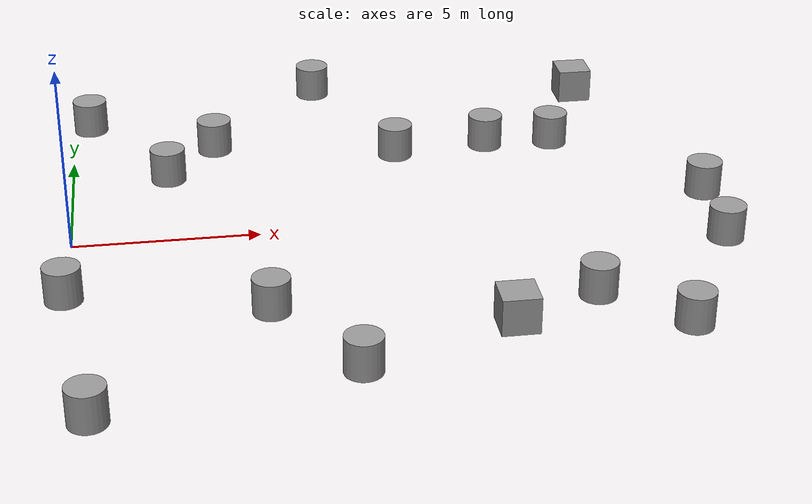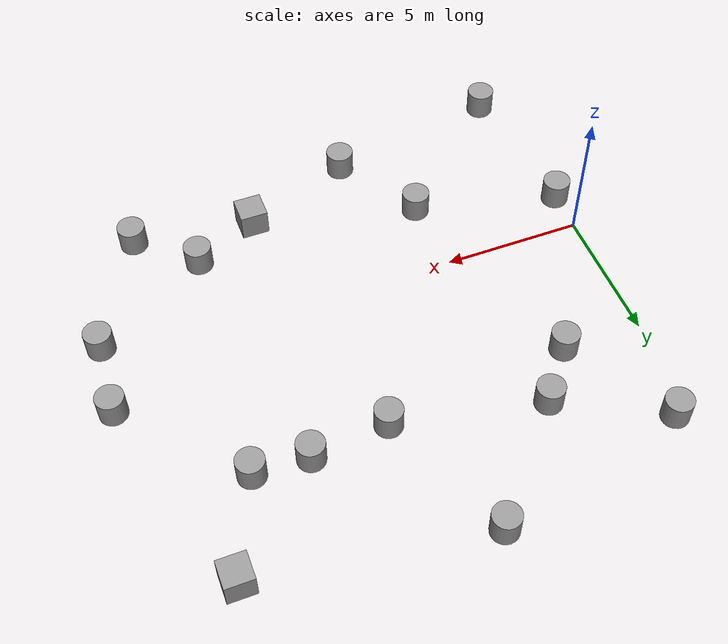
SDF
<sdf version="1.7">
 <model name="objetracetrack">
  <link name="link_0">
   <inertial>
    <mass>1</mass>
    <inertia><ixx>0.145833</ixx><ixy>0</ixy><ixz>0</ixz><iyy>0.145833</iyy><iyz>0</iyz><izz>0.125</izz></inertia>
   </inertial>
   <pose>5.01054 -3.20804 0 0 -0 0</pose>
   <visual name="visual">
    <geometry><cylinder><radius>0.5</radius><length>1</length></cylinder></geometry>
    <material>
     <lighting>1</lighting>
     <script><uri>file://media/materials/scripts/gazebo.material</uri><name>Gazebo/Grey</name></script>
     <shader type="pixel"/>
    </material>
   </visual>
   <collision name="collision">
    <geometry><cylinder><radius>0.5</radius><length>1</length></cylinder></geometry>
    <surface>
     <friction>
      <ode><mu>1</mu><mu2>1</mu2><fdir1>0 0 0</fdir1><slip1>0</slip1><slip2>0</slip2></ode>
      <torsional>
       <coefficient>1</coefficient>
       <patch_radius>0</patch_radius>
       <surface_radius>0</surface_radius>
       <use_patch_radius>1</use_patch_radius>
       <ode><slip>0</slip></ode>
      </torsional>
     </friction>
     <bounce><restitution_coefficient>0</restitution_coefficient><threshold>1e+06</threshold></bounce>
     <contact>
      <collide_without_contact>0</collide_without_contact>
      <collide_without_contact_bitmask>1</collide_without_contact_bitmask>
      <collide_bitmask>1</collide_bitmask>
      <ode>
       <soft_cfm>0</soft_cfm>
       <soft_erp>0.2</soft_erp>
       <kp>1e+13</kp>
       <kd>1</kd>
       <max_vel>0.01</max_vel>
       <min_depth>0</min_depth>
      </ode>
      <bullet>
       <split_impulse>1</split_impulse>
       <split_impulse_penetration_threshold>-0.01</split_impulse_penetration_threshold>
       <soft_cfm>0</soft_cfm>
       <soft_erp>0.2</soft_erp>
       <kp>1e+13</kp>
       <kd>1</kd>
      </bullet>
     </contact>
    </surface>
   </collision>
  </link>
  <link name="link_1">
   <inertial>
    <mass>1</mass>
    <inertia><ixx>0.145833</ixx><ixy>0</ixy><ixz>0</ixz><iyy>0.145833</iyy><iyz>0</iyz><izz>0.125</izz></inertia>
   </inertial>
   <pose>6.93797 -6.26956 0 0 -0 0</pose>
   <visual name="visual">
    <geometry><cylinder><radius>0.5</radius><length>1</length></cylinder></geometry>
    <material>
     <lighting>1</lighting>
     <script><uri>file://media/materials/scripts/gazebo.material</uri><name>Gazebo/Grey</name></script>
     <shader type="pixel"/>
    </material>
   </visual>
   <collision name="collision">
    <geometry><cylinder><radius>0.5</radius><length>1</length></cylinder></geometry>
    <surface>
     <friction>
      <ode><mu>1</mu><mu2>1</mu2><fdir1>0 0 0</fdir1><slip1>0</slip1><slip2>0</slip2></ode>
      <torsional>
       <coefficient>1</coefficient>
       <patch_radius>0</patch_radius>
       <surface_radius>0</surface_radius>
       <use_patch_radius>1</use_patch_radius>
       <ode><slip>0</slip></ode>
      </torsional>
     </friction>
     <bounce><restitution_coefficient>0</restitution_coefficient><threshold>1e+06</threshold></bounce>
     <contact>
      <collide_without_contact>0</collide_without_contact>
      <collide_without_contact_bitmask>1</collide_without_contact_bitmask>
      <collide_bitmask>1</collide_bitmask>
      <ode>
       <soft_cfm>0</soft_cfm>
       <soft_erp>0.2</soft_erp>
       <kp>1e+13</kp>
       <kd>1</kd>
       <max_vel>0.01</max_vel>
       <min_depth>0</min_depth>
      </ode>
      <bullet>
       <split_impulse>1</split_impulse>
       <split_impulse_penetration_threshold>-0.01</split_impulse_penetration_threshold>
       <soft_cfm>0</soft_cfm>
       <soft_erp>0.2</soft_erp>
       <kp>1e+13</kp>
       <kd>1</kd>
      </bullet>
     </contact>
    </surface>
   </collision>
  </link>
  <link name="link_10">
   <inertial>
    <mass>1</mass>
    <inertia><ixx>0.145833</ixx><ixy>0</ixy><ixz>0</ixz><iyy>0.145833</iyy><iyz>0</iyz><izz>0.125</izz></inertia>
   </inertial>
   <pose>14.1744 5.54812 0 0 -0 0</pose>
   <visual name="visual">
    <geometry><cylinder><radius>0.5</radius><length>1</length></cylinder></geometry>
    <material>
     <lighting>1</lighting>
     <script><uri>file://media/materials/scripts/gazebo.material</uri><name>Gazebo/Grey</name></script>
     <shader type="pixel"/>
    </material>
   </visual>
   <collision name="collision">
    <geometry><cylinder><radius>0.5</radius><length>1</length></cylinder></geometry>
    <surface>
     <friction>
      <ode><mu>1</mu><mu2>1</mu2><fdir1>0 0 0</fdir1><slip1>0</slip1><slip2>0</slip2></ode>
      <torsional>
       <coefficient>1</coefficient>
       <patch_radius>0</patch_radius>
       <surface_radius>0</surface_radius>
       <use_patch_radius>1</use_patch_radius>
       <ode><slip>0</slip></ode>
      </torsional>
     </friction>
     <bounce><restitution_coefficient>0</restitution_coefficient><threshold>1e+06</threshold></bounce>
     <contact>
      <collide_without_contact>0</collide_without_contact>
      <collide_without_contact_bitmask>1</collide_without_contact_bitmask>
      <collide_bitmask>1</collide_bitmask>
      <ode>
       <soft_cfm>0</soft_cfm>
       <soft_erp>0.2</soft_erp>
       <kp>1e+13</kp>
       <kd>1</kd>
       <max_vel>0.01</max_vel>
       <min_depth>0</min_depth>
      </ode>
      <bullet>
       <split_impulse>1</split_impulse>
       <split_impulse_penetration_threshold>-0.01</split_impulse_penetration_threshold>
       <soft_cfm>0</soft_cfm>
       <soft_erp>0.2</soft_erp>
       <kp>1e+13</kp>
       <kd>1</kd>
      </bullet>
     </contact>
    </surface>
   </collision>
  </link>
  <link name="link_11">
   <inertial>
    <mass>1</mass>
    <inertia>
     <ixx>0.166667</ixx>
     <ixy>0</ixy>
     <ixz>0</ixz>
     <iyy>0.166667</iyy>
     <iyz>0</iyz>
     <izz>0.166667</izz>
    </inertia>
   </inertial>
   <pose>15.6652 8.94561 0 0 -0 0</pose>
   <visual name="visual">
    <geometry><box><size>1 1 1</size></box></geometry>
    <material>
     <lighting>1</lighting>
     <script><uri>file://media/materials/scripts/gazebo.material</uri><name>Gazebo/Grey</name></script>
     <shader type="pixel"/>
    </material>
   </visual>
   <collision name="collision">
    <geometry><box><size>1 1 1</size></box></geometry>
    <surface>
     <friction>
      <ode><mu>1</mu><mu2>1</mu2><fdir1>0 0 0</fdir1><slip1>0</slip1><slip2>0</slip2></ode>
      <torsional>
       <coefficient>1</coefficient>
       <patch_radius>0</patch_radius>
       <surface_radius>0</surface_radius>
       <use_patch_radius>1</use_patch_radius>
       <ode><slip>0</slip></ode>
      </torsional>
     </friction>
     <bounce><restitution_coefficient>0</restitution_coefficient><threshold>1e+06</threshold></bounce>
     <contact>
      <collide_without_contact>0</collide_without_contact>
      <collide_without_contact_bitmask>1</collide_without_contact_bitmask>
      <collide_bitmask>1</collide_bitmask>
      <ode>
       <soft_cfm>0</soft_cfm>
       <soft_erp>0.2</soft_erp>
       <kp>1e+13</kp>
       <kd>1</kd>
       <max_vel>0.01</max_vel>
       <min_depth>0</min_depth>
      </ode>
      <bullet>
       <split_impulse>1</split_impulse>
       <split_impulse_penetration_threshold>-0.01</split_impulse_penetration_threshold>
       <soft_cfm>0</soft_cfm>
       <soft_erp>0.2</soft_erp>
       <kp>1e+13</kp>
       <kd>1</kd>
      </bullet>
     </contact>
    </surface>
   </collision>
  </link>
  <link name="link_12">
   <inertial>
    <mass>1</mass>
    <inertia><ixx>0.145833</ixx><ixy>0</ixy><ixz>0</ixz><iyy>0.145833</iyy><iyz>0</iyz><izz>0.125</izz></inertia>
   </inertial>
   <pose>7.44329 10.1909 0 0 -0 0</pose>
   <visual name="visual">
    <geometry><cylinder><radius>0.5</radius><length>1</length></cylinder></geometry>
    <material>
     <lighting>1</lighting>
     <script><uri>file://media/materials/scripts/gazebo.material</uri><name>Gazebo/Grey</name></script>
     <shader type="pixel"/>
    </material>
   </visual>
   <collision name="collision">
    <geometry><cylinder><radius>0.5</radius><length>1</length></cylinder></geometry>
    <surface>
     <friction>
      <ode><mu>1</mu><mu2>1</mu2><fdir1>0 0 0</fdir1><slip1>0</slip1><slip2>0</slip2></ode>
      <torsional>
       <coefficient>1</coefficient>
       <patch_radius>0</patch_radius>
       <surface_radius>0</surface_radius>
       <use_patch_radius>1</use_patch_radius>
       <ode><slip>0</slip></ode>
      </torsional>
     </friction>
     <bounce><restitution_coefficient>0</restitution_coefficient><threshold>1e+06</threshold></bounce>
     <contact>
      <collide_without_contact>0</collide_without_contact>
      <collide_without_contact_bitmask>1</collide_without_contact_bitmask>
      <collide_bitmask>1</collide_bitmask>
      <ode>
       <soft_cfm>0</soft_cfm>
       <soft_erp>0.2</soft_erp>
       <kp>1e+13</kp>
       <kd>1</kd>
       <max_vel>0.01</max_vel>
       <min_depth>0</min_depth>
      </ode>
      <bullet>
       <split_impulse>1</split_impulse>
       <split_impulse_penetration_threshold>-0.01</split_impulse_penetration_threshold>
       <soft_cfm>0</soft_cfm>
       <soft_erp>0.2</soft_erp>
       <kp>1e+13</kp>
       <kd>1</kd>
      </bullet>
     </contact>
    </surface>
   </collision>
  </link>
  <link name="link_13">
   <inertial>
    <mass>1</mass>
    <inertia><ixx>0.145833</ixx><ixy>0</ixy><ixz>0</ixz><iyy>0.145833</iyy><iyz>0</iyz><izz>0.125</izz></inertia>
   </inertial>
   <pose>9.41915 5.35781 0 0 -0 0</pose>
   <visual name="visual">
    <geometry><cylinder><radius>0.5</radius><length>1</length></cylinder></geometry>
    <material>
     <lighting>1</lighting>
     <script><uri>file://media/materials/scripts/gazebo.material</uri><name>Gazebo/Grey</name></script>
     <shader type="pixel"/>
    </material>
   </visual>
   <collision name="collision">
    <geometry><cylinder><radius>0.5</radius><length>1</length></cylinder></geometry>
    <surface>
     <friction>
      <ode><mu>1</mu><mu2>1</mu2><fdir1>0 0 0</fdir1><slip1>0</slip1><slip2>0</slip2></ode>
      <torsional>
       <coefficient>1</coefficient>
       <patch_radius>0</patch_radius>
       <surface_radius>0</surface_radius>
       <use_patch_radius>1</use_patch_radius>
       <ode><slip>0</slip></ode>
      </torsional>
     </friction>
     <bounce><restitution_coefficient>0</restitution_coefficient><threshold>1e+06</threshold></bounce>
     <contact>
      <collide_without_contact>0</collide_without_contact>
      <collide_without_contact_bitmask>1</collide_without_contact_bitmask>
      <collide_bitmask>1</collide_bitmask>
      <ode>
       <soft_cfm>0</soft_cfm>
       <soft_erp>0.2</soft_erp>
       <kp>1e+13</kp>
       <kd>1</kd>
       <max_vel>0.01</max_vel>
       <min_depth>0</min_depth>
      </ode>
      <bullet>
       <split_impulse>1</split_impulse>
       <split_impulse_penetration_threshold>-0.01</split_impulse_penetration_threshold>
       <soft_cfm>0</soft_cfm>
       <soft_erp>0.2</soft_erp>
       <kp>1e+13</kp>
       <kd>1</kd>
      </bullet>
     </contact>
    </surface>
   </collision>
  </link>
  <link name="link_14">
   <inertial>
    <mass>1</mass>
    <inertia><ixx>0.145833</ixx><ixy>0</ixy><ixz>0</ixz><iyy>0.145833</iyy><iyz>0</iyz><izz>0.125</izz></inertia>
   </inertial>
   <pose>4.1131 6.43948 0 0 -0 0</pose>
   <visual name="visual">
    <geometry><cylinder><radius>0.5</radius><length>1</length></cylinder></geometry>
    <material>
     <lighting>1</lighting>
     <script><uri>file://media/materials/scripts/gazebo.material</uri><name>Gazebo/Grey</name></script>
     <shader type="pixel"/>
    </material>
   </visual>
   <collision name="collision">
    <geometry><cylinder><radius>0.5</radius><length>1</length></cylinder></geometry>
    <surface>
     <friction>
      <ode><mu>1</mu><mu2>1</mu2><fdir1>0 0 0</fdir1><slip1>0</slip1><slip2>0</slip2></ode>
      <torsional>
       <coefficient>1</coefficient>
       <patch_radius>0</patch_radius>
       <surface_radius>0</surface_radius>
       <use_patch_radius>1</use_patch_radius>
       <ode><slip>0</slip></ode>
      </torsional>
     </friction>
     <bounce><restitution_coefficient>0</restitution_coefficient><threshold>1e+06</threshold></bounce>
     <contact>
      <collide_without_contact>0</collide_without_contact>
      <collide_without_contact_bitmask>1</collide_without_contact_bitmask>
      <collide_bitmask>1</collide_bitmask>
      <ode>
       <soft_cfm>0</soft_cfm>
       <soft_erp>0.2</soft_erp>
       <kp>1e+13</kp>
       <kd>1</kd>
       <max_vel>0.01</max_vel>
       <min_depth>0</min_depth>
      </ode>
      <bullet>
       <split_impulse>1</split_impulse>
       <split_impulse_penetration_threshold>-0.01</split_impulse_penetration_threshold>
       <soft_cfm>0</soft_cfm>
       <soft_erp>0.2</soft_erp>
       <kp>1e+13</kp>
       <kd>1</kd>
      </bullet>
     </contact>
    </surface>
   </collision>
  </link>
  <link name="link_15">
   <inertial>
    <mass>1</mass>
    <inertia><ixx>0.145833</ixx><ixy>0</ixy><ixz>0</ixz><iyy>0.145833</iyy><iyz>0</iyz><izz>0.125</izz></inertia>
   </inertial>
   <pose>2.67704 4.64369 0 0 -0 0</pose>
   <visual name="visual">
    <geometry><cylinder><radius>0.5</radius><length>1</length></cylinder></geometry>
    <material>
     <lighting>1</lighting>
     <script><uri>file://media/materials/scripts/gazebo.material</uri><name>Gazebo/Grey</name></script>
     <shader type="pixel"/>
    </material>
   </visual>
   <collision name="collision">
    <geometry><cylinder><radius>0.5</radius><length>1</length></cylinder></geometry>
    <surface>
     <friction>
      <ode><mu>1</mu><mu2>1</mu2><fdir1>0 0 0</fdir1><slip1>0</slip1><slip2>0</slip2></ode>
      <torsional>
       <coefficient>1</coefficient>
       <patch_radius>0</patch_radius>
       <surface_radius>0</surface_radius>
       <use_patch_radius>1</use_patch_radius>
       <ode><slip>0</slip></ode>
      </torsional>
     </friction>
     <bounce><restitution_coefficient>0</restitution_coefficient><threshold>1e+06</threshold></bounce>
     <contact>
      <collide_without_contact>0</collide_without_contact>
      <collide_without_contact_bitmask>1</collide_without_contact_bitmask>
      <collide_bitmask>1</collide_bitmask>
      <ode>
       <soft_cfm>0</soft_cfm>
       <soft_erp>0.2</soft_erp>
       <kp>1e+13</kp>
       <kd>1</kd>
       <max_vel>0.01</max_vel>
       <min_depth>0</min_depth>
      </ode>
      <bullet>
       <split_impulse>1</split_impulse>
       <split_impulse_penetration_threshold>-0.01</split_impulse_penetration_threshold>
       <soft_cfm>0</soft_cfm>
       <soft_erp>0.2</soft_erp>
       <kp>1e+13</kp>
       <kd>1</kd>
      </bullet>
     </contact>
    </surface>
   </collision>
  </link>
  <link name="link_16">
   <inertial>
    <mass>1</mass>
    <inertia><ixx>0.145833</ixx><ixy>0</ixy><ixz>0</ixz><iyy>0.145833</iyy><iyz>0</iyz><izz>0.125</izz></inertia>
   </inertial>
   <pose>0.43334 8.40793 0 0 -0 0</pose>
   <visual name="visual">
    <geometry><cylinder><radius>0.5</radius><length>1</length></cylinder></geometry>
    <material>
     <lighting>1</lighting>
     <script><uri>file://media/materials/scripts/gazebo.material</uri><name>Gazebo/Grey</name></script>
     <shader type="pixel"/>
    </material>
   </visual>
   <collision name="collision">
    <geometry><cylinder><radius>0.5</radius><length>1</length></cylinder></geometry>
    <surface>
     <friction>
      <ode><mu>1</mu><mu2>1</mu2><fdir1>0 0 0</fdir1><slip1>0</slip1><slip2>0</slip2></ode>
      <torsional>
       <coefficient>1</coefficient>
       <patch_radius>0</patch_radius>
       <surface_radius>0</surface_radius>
       <use_patch_radius>1</use_patch_radius>
       <ode><slip>0</slip></ode>
      </torsional>
     </friction>
     <bounce><restitution_coefficient>0</restitution_coefficient><threshold>1e+06</threshold></bounce>
     <contact>
      <collide_without_contact>0</collide_without_contact>
      <collide_without_contact_bitmask>1</collide_without_contact_bitmask>
      <collide_bitmask>1</collide_bitmask>
      <ode>
       <soft_cfm>0</soft_cfm>
       <soft_erp>0.2</soft_erp>
       <kp>1e+13</kp>
       <kd>1</kd>
       <max_vel>0.01</max_vel>
       <min_depth>0</min_depth>
      </ode>
      <bullet>
       <split_impulse>1</split_impulse>
       <split_impulse_penetration_threshold>-0.01</split_impulse_penetration_threshold>
       <soft_cfm>0</soft_cfm>
       <soft_erp>0.2</soft_erp>
       <kp>1e+13</kp>
       <kd>1</kd>
      </bullet>
     </contact>
    </surface>
   </collision>
  </link>
  <link name="link_3">
   <inertial>
    <mass>1</mass>
    <inertia>
     <ixx>0.166667</ixx>
     <ixy>0</ixy>
     <ixz>0</ixz>
     <iyy>0.166667</iyy>
     <iyz>0</iyz>
     <izz>0.166667</izz>
    </inertia>
   </inertial>
   <pose>10.9898 -4.72561 0 0 -0 0</pose>
   <visual name="visual">
    <geometry><box><size>1 1 1</size></box></geometry>
    <material>
     <lighting>1</lighting>
     <script><uri>file://media/materials/scripts/gazebo.material</uri><name>Gazebo/Grey</name></script>
     <shader type="pixel"/>
    </material>
   </visual>
   <collision name="collision">
    <geometry><box><size>1 1 1</size></box></geometry>
    <surface>
     <friction>
      <ode><mu>1</mu><mu2>1</mu2><fdir1>0 0 0</fdir1><slip1>0</slip1><slip2>0</slip2></ode>
      <torsional>
       <coefficient>1</coefficient>
       <patch_radius>0</patch_radius>
       <surface_radius>0</surface_radius>
       <use_patch_radius>1</use_patch_radius>
       <ode><slip>0</slip></ode>
      </torsional>
     </friction>
     <bounce><restitution_coefficient>0</restitution_coefficient><threshold>1e+06</threshold></bounce>
     <contact>
      <collide_without_contact>0</collide_without_contact>
      <collide_without_contact_bitmask>1</collide_without_contact_bitmask>
      <collide_bitmask>1</collide_bitmask>
      <ode>
       <soft_cfm>0</soft_cfm>
       <soft_erp>0.2</soft_erp>
       <kp>1e+13</kp>
       <kd>1</kd>
       <max_vel>0.01</max_vel>
       <min_depth>0</min_depth>
      </ode>
      <bullet>
       <split_impulse>1</split_impulse>
       <split_impulse_penetration_threshold>-0.01</split_impulse_penetration_threshold>
       <soft_cfm>0</soft_cfm>
       <soft_erp>0.2</soft_erp>
       <kp>1e+13</kp>
       <kd>1</kd>
      </bullet>
     </contact>
    </surface>
   </collision>
  </link>
  <link name="link_34">
   <inertial>
    <mass>1</mass>
    <inertia><ixx>0.145833</ixx><ixy>0</ixy><ixz>0</ixz><iyy>0.145833</iyy><iyz>0</iyz><izz>0.125</izz></inertia>
   </inertial>
   <pose>0.465722 -7.48561 0 0 -0 0</pose>
   <visual name="visual">
    <geometry><cylinder><radius>0.5</radius><length>1</length></cylinder></geometry>
    <material>
     <lighting>1</lighting>
     <script><uri>file://media/materials/scripts/gazebo.material</uri><name>Gazebo/Grey</name></script>
     <shader type="pixel"/>
    </material>
   </visual>
   <collision name="collision">
    <geometry><cylinder><radius>0.5</radius><length>1</length></cylinder></geometry>
    <surface>
     <friction>
      <ode><mu>1</mu><mu2>1</mu2><fdir1>0 0 0</fdir1><slip1>0</slip1><slip2>0</slip2></ode>
      <torsional>
       <coefficient>1</coefficient>
       <patch_radius>0</patch_radius>
       <surface_radius>0</surface_radius>
       <use_patch_radius>1</use_patch_radius>
       <ode><slip>0</slip></ode>
      </torsional>
     </friction>
     <bounce><restitution_coefficient>0</restitution_coefficient><threshold>1e+06</threshold></bounce>
     <contact>
      <collide_without_contact>0</collide_without_contact>
      <collide_without_contact_bitmask>1</collide_without_contact_bitmask>
      <collide_bitmask>1</collide_bitmask>
      <ode>
       <soft_cfm>0</soft_cfm>
       <soft_erp>0.2</soft_erp>
       <kp>1e+13</kp>
       <kd>1</kd>
       <max_vel>0.01</max_vel>
       <min_depth>0</min_depth>
      </ode>
      <bullet>
       <split_impulse>1</split_impulse>
       <split_impulse_penetration_threshold>-0.01</split_impulse_penetration_threshold>
       <soft_cfm>0</soft_cfm>
       <soft_erp>0.2</soft_erp>
       <kp>1e+13</kp>
       <kd>1</kd>
      </bullet>
     </contact>
    </surface>
   </collision>
  </link>
  <link name="link_35">
   <inertial>
    <mass>1</mass>
    <inertia><ixx>0.145833</ixx><ixy>0</ixy><ixz>0</ixz><iyy>0.145833</iyy><iyz>0</iyz><izz>0.125</izz></inertia>
   </inertial>
   <pose>-0.195645 -1.89751 0 0 -0 0</pose>
   <visual name="visual">
    <geometry><cylinder><radius>0.5</radius><length>1</length></cylinder></geometry>
    <material>
     <lighting>1</lighting>
     <script><uri>file://media/materials/scripts/gazebo.material</uri><name>Gazebo/Grey</name></script>
     <shader type="pixel"/>
    </material>
   </visual>
   <collision name="collision">
    <geometry><cylinder><radius>0.5</radius><length>1</length></cylinder></geometry>
    <surface>
     <friction>
      <ode><mu>1</mu><mu2>1</mu2><fdir1>0 0 0</fdir1><slip1>0</slip1><slip2>0</slip2></ode>
      <torsional>
       <coefficient>1</coefficient>
       <patch_radius>0</patch_radius>
       <surface_radius>0</surface_radius>
       <use_patch_radius>1</use_patch_radius>
       <ode><slip>0</slip></ode>
      </torsional>
     </friction>
     <bounce><restitution_coefficient>0</restitution_coefficient><threshold>1e+06</threshold></bounce>
     <contact>
      <collide_without_contact>0</collide_without_contact>
      <collide_without_contact_bitmask>1</collide_without_contact_bitmask>
      <collide_bitmask>1</collide_bitmask>
      <ode>
       <soft_cfm>0</soft_cfm>
       <soft_erp>0.2</soft_erp>
       <kp>1e+13</kp>
       <kd>1</kd>
       <max_vel>0.01</max_vel>
       <min_depth>0</min_depth>
      </ode>
      <bullet>
       <split_impulse>1</split_impulse>
       <split_impulse_penetration_threshold>-0.01</split_impulse_penetration_threshold>
       <soft_cfm>0</soft_cfm>
       <soft_erp>0.2</soft_erp>
       <kp>1e+13</kp>
       <kd>1</kd>
      </bullet>
     </contact>
    </surface>
   </collision>
  </link>
  <link name="link_5">
   <inertial>
    <mass>1</mass>
    <inertia><ixx>0.145833</ixx><ixy>0</ixy><ixz>0</ixz><iyy>0.145833</iyy><iyz>0</iyz><izz>0.125</izz></inertia>
   </inertial>
   <pose>15.3527 -5.36685 0 0 -0 0</pose>
   <visual name="visual">
    <geometry><cylinder><radius>0.5</radius><length>1</length></cylinder></geometry>
    <material>
     <lighting>1</lighting>
     <script><uri>file://media/materials/scripts/gazebo.material</uri><name>Gazebo/Grey</name></script>
     <shader type="pixel"/>
    </material>
   </visual>
   <collision name="collision">
    <geometry><cylinder><radius>0.5</radius><length>1</length></cylinder></geometry>
    <surface>
     <friction>
      <ode><mu>1</mu><mu2>1</mu2><fdir1>0 0 0</fdir1><slip1>0</slip1><slip2>0</slip2></ode>
      <torsional>
       <coefficient>1</coefficient>
       <patch_radius>0</patch_radius>
       <surface_radius>0</surface_radius>
       <use_patch_radius>1</use_patch_radius>
       <ode><slip>0</slip></ode>
      </torsional>
     </friction>
     <bounce><restitution_coefficient>0</restitution_coefficient><threshold>1e+06</threshold></bounce>
     <contact>
      <collide_without_contact>0</collide_without_contact>
      <collide_without_contact_bitmask>1</collide_without_contact_bitmask>
      <collide_bitmask>1</collide_bitmask>
      <ode>
       <soft_cfm>0</soft_cfm>
       <soft_erp>0.2</soft_erp>
       <kp>1e+13</kp>
       <kd>1</kd>
       <max_vel>0.01</max_vel>
       <min_depth>0</min_depth>
      </ode>
      <bullet>
       <split_impulse>1</split_impulse>
       <split_impulse_penetration_threshold>-0.01</split_impulse_penetration_threshold>
       <soft_cfm>0</soft_cfm>
       <soft_erp>0.2</soft_erp>
       <kp>1e+13</kp>
       <kd>1</kd>
      </bullet>
     </contact>
    </surface>
   </collision>
  </link>
  <link name="link_6">
   <inertial>
    <mass>1</mass>
    <inertia><ixx>0.145833</ixx><ixy>0</ixy><ixz>0</ixz><iyy>0.145833</iyy><iyz>0</iyz><izz>0.125</izz></inertia>
   </inertial>
   <pose>13.3487 -3.58773 0 0 -0 0</pose>
   <visual name="visual">
    <geometry><cylinder><radius>0.5</radius><length>1</length></cylinder></geometry>
    <material>
     <lighting>1</lighting>
     <script><uri>file://media/materials/scripts/gazebo.material</uri><name>Gazebo/Grey</name></script>
     <shader type="pixel"/>
    </material>
   </visual>
   <collision name="collision">
    <geometry><cylinder><radius>0.5</radius><length>1</length></cylinder></geometry>
    <surface>
     <friction>
      <ode><mu>1</mu><mu2>1</mu2><fdir1>0 0 0</fdir1><slip1>0</slip1><slip2>0</slip2></ode>
      <torsional>
       <coefficient>1</coefficient>
       <patch_radius>0</patch_radius>
       <surface_radius>0</surface_radius>
       <use_patch_radius>1</use_patch_radius>
       <ode><slip>0</slip></ode>
      </torsional>
     </friction>
     <bounce><restitution_coefficient>0</restitution_coefficient><threshold>1e+06</threshold></bounce>
     <contact>
      <collide_without_contact>0</collide_without_contact>
      <collide_without_contact_bitmask>1</collide_without_contact_bitmask>
      <collide_bitmask>1</collide_bitmask>
      <ode>
       <soft_cfm>0</soft_cfm>
       <soft_erp>0.2</soft_erp>
       <kp>1e+13</kp>
       <kd>1</kd>
       <max_vel>0.01</max_vel>
       <min_depth>0</min_depth>
      </ode>
      <bullet>
       <split_impulse>1</split_impulse>
       <split_impulse_penetration_threshold>-0.01</split_impulse_penetration_threshold>
       <soft_cfm>0</soft_cfm>
       <soft_erp>0.2</soft_erp>
       <kp>1e+13</kp>
       <kd>1</kd>
      </bullet>
     </contact>
    </surface>
   </collision>
  </link>
  <link name="link_7">
   <inertial>
    <mass>1</mass>
    <inertia><ixx>0.145833</ixx><ixy>0</ixy><ixz>0</ixz><iyy>0.145833</iyy><iyz>0</iyz><izz>0.125</izz></inertia>
   </inertial>
   <pose>17.5537 -1.07995 0 0 -0 0</pose>
   <visual name="visual">
    <geometry><cylinder><radius>0.5</radius><length>1</length></cylinder></geometry>
    <material>
     <lighting>1</lighting>
     <script><uri>file://media/materials/scripts/gazebo.material</uri><name>Gazebo/Grey</name></script>
     <shader type="pixel"/>
    </material>
   </visual>
   <collision name="collision">
    <geometry><cylinder><radius>0.5</radius><length>1</length></cylinder></geometry>
    <surface>
     <friction>
      <ode><mu>1</mu><mu2>1</mu2><fdir1>0 0 0</fdir1><slip1>0</slip1><slip2>0</slip2></ode>
      <torsional>
       <coefficient>1</coefficient>
       <patch_radius>0</patch_radius>
       <surface_radius>0</surface_radius>
       <use_patch_radius>1</use_patch_radius>
       <ode><slip>0</slip></ode>
      </torsional>
     </friction>
     <bounce><restitution_coefficient>0</restitution_coefficient><threshold>1e+06</threshold></bounce>
     <contact>
      <collide_without_contact>0</collide_without_contact>
      <collide_without_contact_bitmask>1</collide_without_contact_bitmask>
      <collide_bitmask>1</collide_bitmask>
      <ode>
       <soft_cfm>0</soft_cfm>
       <soft_erp>0.2</soft_erp>
       <kp>1e+13</kp>
       <kd>1</kd>
       <max_vel>0.01</max_vel>
       <min_depth>0</min_depth>
      </ode>
      <bullet>
       <split_impulse>1</split_impulse>
       <split_impulse_penetration_threshold>-0.01</split_impulse_penetration_threshold>
       <soft_cfm>0</soft_cfm>
       <soft_erp>0.2</soft_erp>
       <kp>1e+13</kp>
       <kd>1</kd>
      </bullet>
     </contact>
    </surface>
   </collision>
  </link>
  <link name="link_8">
   <inertial>
    <mass>1</mass>
    <inertia><ixx>0.145833</ixx><ixy>0</ixy><ixz>0</ixz><iyy>0.145833</iyy><iyz>0</iyz><izz>0.125</izz></inertia>
   </inertial>
   <pose>17.7558 1.63676 0 0 -0 0</pose>
   <visual name="visual">
    <geometry><cylinder><radius>0.5</radius><length>1</length></cylinder></geometry>
    <material>
     <lighting>1</lighting>
     <script><uri>file://media/materials/scripts/gazebo.material</uri><name>Gazebo/Grey</name></script>
     <shader type="pixel"/>
    </material>
   </visual>
   <collision name="collision">
    <geometry><cylinder><radius>0.5</radius><length>1</length></cylinder></geometry>
    <surface>
     <friction>
      <ode><mu>1</mu><mu2>1</mu2><fdir1>0 0 0</fdir1><slip1>0</slip1><slip2>0</slip2></ode>
      <torsional>
       <coefficient>1</coefficient>
       <patch_radius>0</patch_radius>
       <surface_radius>0</surface_radius>
       <use_patch_radius>1</use_patch_radius>
       <ode><slip>0</slip></ode>
      </torsional>
     </friction>
     <bounce><restitution_coefficient>0</restitution_coefficient><threshold>1e+06</threshold></bounce>
     <contact>
      <collide_without_contact>0</collide_without_contact>
      <collide_without_contact_bitmask>1</collide_without_contact_bitmask>
      <collide_bitmask>1</collide_bitmask>
      <ode>
       <soft_cfm>0</soft_cfm>
       <soft_erp>0.2</soft_erp>
       <kp>1e+13</kp>
       <kd>1</kd>
       <max_vel>0.01</max_vel>
       <min_depth>0</min_depth>
      </ode>
      <bullet>
       <split_impulse>1</split_impulse>
       <split_impulse_penetration_threshold>-0.01</split_impulse_penetration_threshold>
       <soft_cfm>0</soft_cfm>
       <soft_erp>0.2</soft_erp>
       <kp>1e+13</kp>
       <kd>1</kd>
      </bullet>
     </contact>
    </surface>
   </collision>
  </link>
  <link name="link_9">
   <inertial>
    <mass>1</mass>
    <inertia><ixx>0.145833</ixx><ixy>0</ixy><ixz>0</ixz><iyy>0.145833</iyy><iyz>0</iyz><izz>0.125</izz></inertia>
   </inertial>
   <pose>12.2014 5.65194 0 0 -0 0</pose>
   <visual name="visual">
    <geometry><cylinder><radius>0.5</radius><length>1</length></cylinder></geometry>
    <material>
     <lighting>1</lighting>
     <script><uri>file://media/materials/scripts/gazebo.material</uri><name>Gazebo/Grey</name></script>
     <shader type="pixel"/>
    </material>
   </visual>
   <collision name="collision">
    <geometry><cylinder><radius>0.5</radius><length>1</length></cylinder></geometry>
    <surface>
     <friction>
      <ode><mu>1</mu><mu2>1</mu2><fdir1>0 0 0</fdir1><slip1>0</slip1><slip2>0</slip2></ode>
      <torsional>
       <coefficient>1</coefficient>
       <patch_radius>0</patch_radius>
       <surface_radius>0</surface_radius>
       <use_patch_radius>1</use_patch_radius>
       <ode><slip>0</slip></ode>
      </torsional>
     </friction>
     <bounce><restitution_coefficient>0</restitution_coefficient><threshold>1e+06</threshold></bounce>
     <contact>
      <collide_without_contact>0</collide_without_contact>
      <collide_without_contact_bitmask>1</collide_without_contact_bitmask>
      <collide_bitmask>1</collide_bitmask>
      <ode>
       <soft_cfm>0</soft_cfm>
       <soft_erp>0.2</soft_erp>
       <kp>1e+13</kp>
       <kd>1</kd>
       <max_vel>0.01</max_vel>
       <min_depth>0</min_depth>
      </ode>
      <bullet>
       <split_impulse>1</split_impulse>
       <split_impulse_penetration_threshold>-0.01</split_impulse_penetration_threshold>
       <soft_cfm>0</soft_cfm>
       <soft_erp>0.2</soft_erp>
       <kp>1e+13</kp>
       <kd>1</kd>
      </bullet>
     </contact>
    </surface>
   </collision>
  </link>
  <static>0</static>
 </model>
</sdf>
